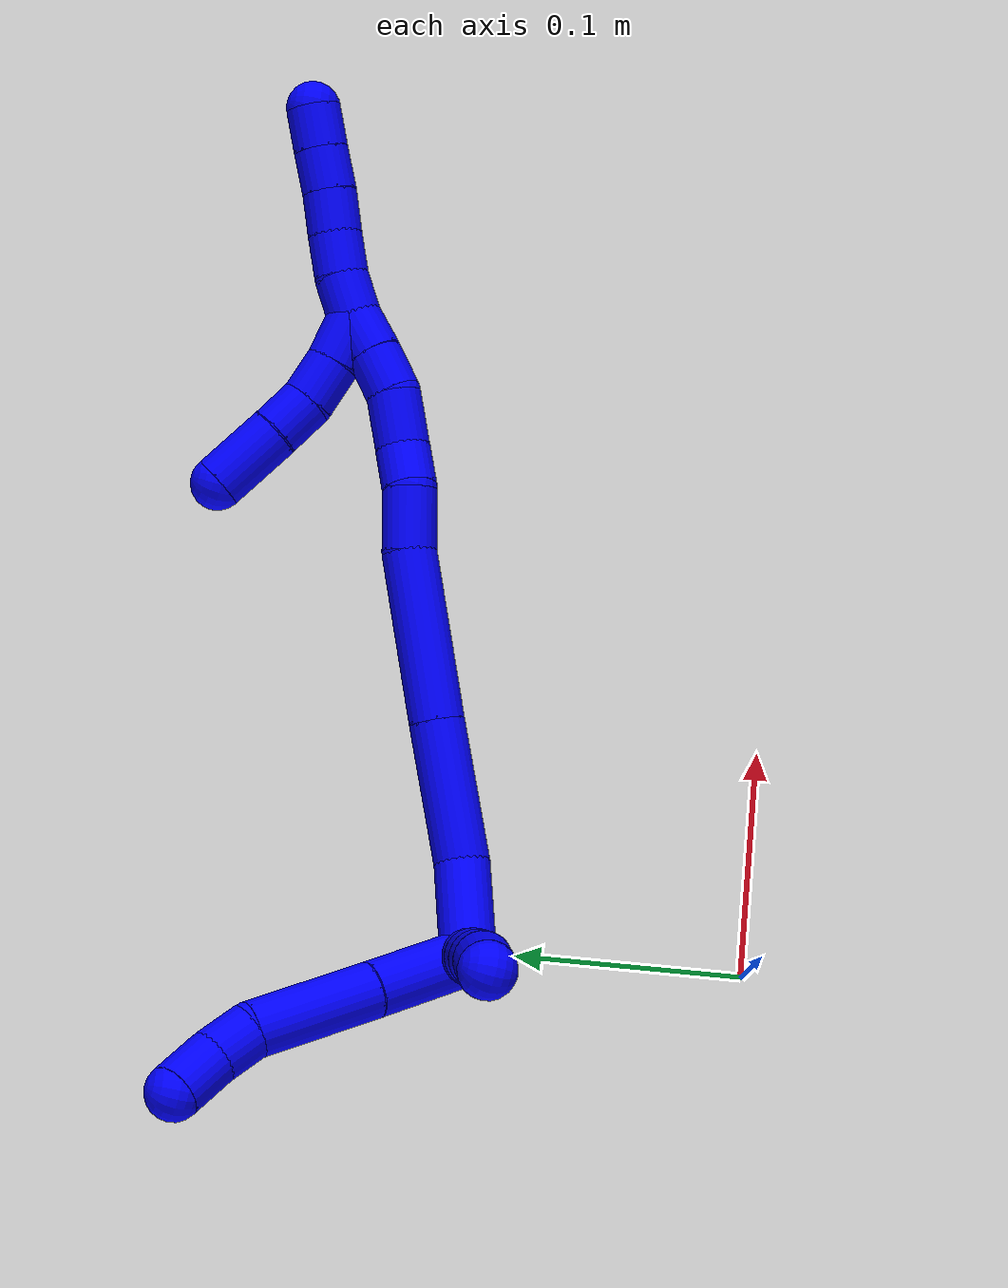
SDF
<sdf version="1.7">
 <world name="default">
  <model name="1">
   <static>0</static>
   <link name="1">
    <collision name="collision-cylinder-e_1_2_8">
     <pose>-0.012397 0.001278 0.020474 -0.062343 -0.54359 0.01738</pose>
     <geometry><cylinder><radius>0.0125</radius><length>0.047938</length></cylinder></geometry>
     <surface>
      <friction><ode><mu>1.16</mu><mu2>1.16</mu2><slip1>0</slip1><slip2>0</slip2></ode></friction>
      <contact><ode><kp>1e+06</kp><kd>1</kd><max_vel>0</max_vel><min_depth>0.001</min_depth></ode></contact>
     </surface>
    </collision>
    <visual name="visual-cylinder-e_1_2_8">
     <pose>-0.012397 0.001278 0.020474 -0.062343 -0.54359 0.01738</pose>
     <geometry><cylinder><radius>0.0125</radius><length>0.047938</length></cylinder></geometry>
     <material><ambient>0 0 1 1</ambient></material>
    </visual>
    <collision name="collision-cylinder-e_2_8_9">
     <pose>-0.038973 0.00535 0.065608 -0.112828 -0.519075 0.029988</pose>
     <geometry><cylinder><radius>0.0125</radius><length>0.057165</length></cylinder></geometry>
     <surface>
      <friction><ode><mu>1.16</mu><mu2>1.16</mu2><slip1>0</slip1><slip2>0</slip2></ode></friction>
      <contact><ode><kp>1e+06</kp><kd>1</kd><max_vel>0</max_vel><min_depth>0.001</min_depth></ode></contact>
     </surface>
    </collision>
    <visual name="visual-cylinder-e_2_8_9">
     <pose>-0.038973 0.00535 0.065608 -0.112828 -0.519075 0.029988</pose>
     <geometry><cylinder><radius>0.0125</radius><length>0.057165</length></cylinder></geometry>
     <material><ambient>0 0 1 1</ambient></material>
    </visual>
    <collision name="collision-cylinder-e_3_9_10">
     <pose>-0.0602 0.010105 0.097217 -0.274966 -0.77331 0.112544</pose>
     <geometry><cylinder><radius>0.0125</radius><length>0.020178</length></cylinder></geometry>
     <surface>
      <friction><ode><mu>1.16</mu><mu2>1.16</mu2><slip1>0</slip1><slip2>0</slip2></ode></friction>
      <contact><ode><kp>1e+06</kp><kd>1</kd><max_vel>0</max_vel><min_depth>0.001</min_depth></ode></contact>
     </surface>
    </collision>
    <visual name="visual-cylinder-e_3_9_10">
     <pose>-0.0602 0.010105 0.097217 -0.274966 -0.77331 0.112544</pose>
     <geometry><cylinder><radius>0.0125</radius><length>0.020178</length></cylinder></geometry>
     <material><ambient>0 0 1 1</ambient></material>
    </visual>
    <collision name="collision-cylinder-e_4_10_6">
     <pose>-0.077061 0.011361 0.111645 0.093862 -0.917464 -0.046381</pose>
     <geometry><cylinder><radius>0.0125</radius><length>0.024719</length></cylinder></geometry>
     <surface>
      <friction><ode><mu>1.16</mu><mu2>1.16</mu2><slip1>0</slip1><slip2>0</slip2></ode></friction>
      <contact><ode><kp>1e+06</kp><kd>1</kd><max_vel>0</max_vel><min_depth>0.001</min_depth></ode></contact>
     </surface>
    </collision>
    <visual name="visual-cylinder-e_4_10_6">
     <pose>-0.077061 0.011361 0.111645 0.093862 -0.917464 -0.046381</pose>
     <geometry><cylinder><radius>0.0125</radius><length>0.024719</length></cylinder></geometry>
     <material><ambient>0 0 1 1</ambient></material>
    </visual>
    <collision name="collision-cylinder-e_1_2_11">
     <pose>-0.007531 -0.015355 0.004047 1.3131 -0.442837 -0.343516</pose>
     <geometry><cylinder><radius>0.0125</radius><length>0.035149</length></cylinder></geometry>
     <surface>
      <friction><ode><mu>1.16</mu><mu2>1.16</mu2><slip1>0</slip1><slip2>0</slip2></ode></friction>
      <contact><ode><kp>1e+06</kp><kd>1</kd><max_vel>0</max_vel><min_depth>0.001</min_depth></ode></contact>
     </surface>
    </collision>
    <visual name="visual-cylinder-e_1_2_11">
     <pose>-0.007531 -0.015355 0.004047 1.3131 -0.442837 -0.343516</pose>
     <geometry><cylinder><radius>0.0125</radius><length>0.035149</length></cylinder></geometry>
     <material><ambient>0 0 1 1</ambient></material>
    </visual>
    <collision name="collision-cylinder-e_2_11_12">
     <pose>-0.020298 -0.040834 0.010445 1.34256 -0.46668 -0.373187</pose>
     <geometry><cylinder><radius>0.0125</radius><length>0.023276</length></cylinder></geometry>
     <surface>
      <friction><ode><mu>1.16</mu><mu2>1.16</mu2><slip1>0</slip1><slip2>0</slip2></ode></friction>
      <contact><ode><kp>1e+06</kp><kd>1</kd><max_vel>0</max_vel><min_depth>0.001</min_depth></ode></contact>
     </surface>
    </collision>
    <visual name="visual-cylinder-e_2_11_12">
     <pose>-0.020298 -0.040834 0.010445 1.34256 -0.46668 -0.373187</pose>
     <geometry><cylinder><radius>0.0125</radius><length>0.023276</length></cylinder></geometry>
     <material><ambient>0 0 1 1</ambient></material>
    </visual>
    <collision name="collision-cylinder-e_3_12_13">
     <pose>-0.030041 -0.059693 0.014689 1.3575 -0.467024 -0.379094</pose>
     <geometry><cylinder><radius>0.0125</radius><length>0.02002</length></cylinder></geometry>
     <surface>
      <friction><ode><mu>1.16</mu><mu2>1.16</mu2><slip1>0</slip1><slip2>0</slip2></ode></friction>
      <contact><ode><kp>1e+06</kp><kd>1</kd><max_vel>0</max_vel><min_depth>0.001</min_depth></ode></contact>
     </surface>
    </collision>
    <visual name="visual-cylinder-e_3_12_13">
     <pose>-0.030041 -0.059693 0.014689 1.3575 -0.467024 -0.379094</pose>
     <geometry><cylinder><radius>0.0125</radius><length>0.02002</length></cylinder></geometry>
     <material><ambient>0 0 1 1</ambient></material>
    </visual>
    <collision name="collision-cylinder-e_4_13_5">
     <pose>-0.040707 -0.077082 0.018406 1.36296 -0.608335 -0.498636</pose>
     <geometry><cylinder><radius>0.0125</radius><length>0.021555</length></cylinder></geometry>
     <surface>
      <friction><ode><mu>1.16</mu><mu2>1.16</mu2><slip1>0</slip1><slip2>0</slip2></ode></friction>
      <contact><ode><kp>1e+06</kp><kd>1</kd><max_vel>0</max_vel><min_depth>0.001</min_depth></ode></contact>
     </surface>
    </collision>
    <visual name="visual-cylinder-e_4_13_5">
     <pose>-0.040707 -0.077082 0.018406 1.36296 -0.608335 -0.498636</pose>
     <geometry><cylinder><radius>0.0125</radius><length>0.021555</length></cylinder></geometry>
     <material><ambient>0 0 1 1</ambient></material>
    </visual>
    <collision name="collision-cylinder-e_1_2_14">
     <pose>0.02105 -0.001931 0.004086 0.441452 1.3593 0.358741</pose>
     <geometry><cylinder><radius>0.0125</radius><length>0.043059</length></cylinder></geometry>
     <surface>
      <friction><ode><mu>1.16</mu><mu2>1.16</mu2><slip1>0</slip1><slip2>0</slip2></ode></friction>
      <contact><ode><kp>1e+06</kp><kd>1</kd><max_vel>0</max_vel><min_depth>0.001</min_depth></ode></contact>
     </surface>
    </collision>
    <visual name="visual-cylinder-e_1_2_14">
     <pose>0.02105 -0.001931 0.004086 0.441452 1.3593 0.358741</pose>
     <geometry><cylinder><radius>0.0125</radius><length>0.043059</length></cylinder></geometry>
     <material><ambient>0 0 1 1</ambient></material>
    </visual>
    <collision name="collision-cylinder-e_2_14_15">
     <pose>0.0704 -0.012306 0.019859 0.625667 1.09959 0.391369</pose>
     <geometry><cylinder><radius>0.0125</radius><length>0.063521</length></cylinder></geometry>
     <surface>
      <friction><ode><mu>1.16</mu><mu2>1.16</mu2><slip1>0</slip1><slip2>0</slip2></ode></friction>
      <contact><ode><kp>1e+06</kp><kd>1</kd><max_vel>0</max_vel><min_depth>0.001</min_depth></ode></contact>
     </surface>
    </collision>
    <visual name="visual-cylinder-e_2_14_15">
     <pose>0.0704 -0.012306 0.019859 0.625667 1.09959 0.391369</pose>
     <geometry><cylinder><radius>0.0125</radius><length>0.063521</length></cylinder></geometry>
     <material><ambient>0 0 1 1</ambient></material>
    </visual>
    <collision name="collision-cylinder-e_3_15_16">
     <pose>0.133543 -0.031401 0.045391 0.655762 1.1061 0.413953</pose>
     <geometry><cylinder><radius>0.0125</radius><length>0.077955</length></cylinder></geometry>
     <surface>
      <friction><ode><mu>1.16</mu><mu2>1.16</mu2><slip1>0</slip1><slip2>0</slip2></ode></friction>
      <contact><ode><kp>1e+06</kp><kd>1</kd><max_vel>0</max_vel><min_depth>0.001</min_depth></ode></contact>
     </surface>
    </collision>
    <visual name="visual-cylinder-e_3_15_16">
     <pose>0.133543 -0.031401 0.045391 0.655762 1.1061 0.413953</pose>
     <geometry><cylinder><radius>0.0125</radius><length>0.077955</length></cylinder></geometry>
     <material><ambient>0 0 1 1</ambient></material>
    </visual>
    <collision name="collision-cylinder-e_4_16_17">
     <pose>0.18134 -0.047327 0.062316 1.04222 1.13013 0.698105</pose>
     <geometry><cylinder><radius>0.0125</radius><length>0.028641</length></cylinder></geometry>
     <surface>
      <friction><ode><mu>1.16</mu><mu2>1.16</mu2><slip1>0</slip1><slip2>0</slip2></ode></friction>
      <contact><ode><kp>1e+06</kp><kd>1</kd><max_vel>0</max_vel><min_depth>0.001</min_depth></ode></contact>
     </surface>
    </collision>
    <visual name="visual-cylinder-e_4_16_17">
     <pose>0.18134 -0.047327 0.062316 1.04222 1.13013 0.698105</pose>
     <geometry><cylinder><radius>0.0125</radius><length>0.028641</length></cylinder></geometry>
     <material><ambient>0 0 1 1</ambient></material>
    </visual>
    <collision name="collision-cylinder-e_5_17_18">
     <pose>0.203972 -0.053236 0.068246 0.219221 1.27785 0.163147</pose>
     <geometry><cylinder><radius>0.0125</radius><length>0.02022</length></cylinder></geometry>
     <surface>
      <friction><ode><mu>1.16</mu><mu2>1.16</mu2><slip1>0</slip1><slip2>0</slip2></ode></friction>
      <contact><ode><kp>1e+06</kp><kd>1</kd><max_vel>0</max_vel><min_depth>0.001</min_depth></ode></contact>
     </surface>
    </collision>
    <visual name="visual-cylinder-e_5_17_18">
     <pose>0.203972 -0.053236 0.068246 0.219221 1.27785 0.163147</pose>
     <geometry><cylinder><radius>0.0125</radius><length>0.02022</length></cylinder></geometry>
     <material><ambient>0 0 1 1</ambient></material>
    </visual>
    <collision name="collision-cylinder-e_6_18_19">
     <pose>0.225082 -0.057687 0.075878 0.673459 1.07933 0.413369</pose>
     <geometry><cylinder><radius>0.0125</radius><length>0.025929</length></cylinder></geometry>
     <surface>
      <friction><ode><mu>1.16</mu><mu2>1.16</mu2><slip1>0</slip1><slip2>0</slip2></ode></friction>
      <contact><ode><kp>1e+06</kp><kd>1</kd><max_vel>0</max_vel><min_depth>0.001</min_depth></ode></contact>
     </surface>
    </collision>
    <visual name="visual-cylinder-e_6_18_19">
     <pose>0.225082 -0.057687 0.075878 0.673459 1.07933 0.413369</pose>
     <geometry><cylinder><radius>0.0125</radius><length>0.025929</length></cylinder></geometry>
     <material><ambient>0 0 1 1</ambient></material>
    </visual>
    <collision name="collision-cylinder-e_7_19_20">
     <pose>0.244984 -0.062393 0.086367 0.154704 0.972481 0.081889</pose>
     <geometry><cylinder><radius>0.0125</radius><length>0.020507</length></cylinder></geometry>
     <surface>
      <friction><ode><mu>1.16</mu><mu2>1.16</mu2><slip1>0</slip1><slip2>0</slip2></ode></friction>
      <contact><ode><kp>1e+06</kp><kd>1</kd><max_vel>0</max_vel><min_depth>0.001</min_depth></ode></contact>
     </surface>
    </collision>
    <visual name="visual-cylinder-e_7_19_20">
     <pose>0.244984 -0.062393 0.086367 0.154704 0.972481 0.081889</pose>
     <geometry><cylinder><radius>0.0125</radius><length>0.020507</length></cylinder></geometry>
     <material><ambient>0 0 1 1</ambient></material>
    </visual>
    <collision name="collision-cylinder-e_8_20_1">
     <pose>0.26159 -0.063792 0.098011 0.085568 0.938518 0.043406</pose>
     <geometry><cylinder><radius>0.0125</radius><length>0.020167</length></cylinder></geometry>
     <surface>
      <friction><ode><mu>1.16</mu><mu2>1.16</mu2><slip1>0</slip1><slip2>0</slip2></ode></friction>
      <contact><ode><kp>1e+06</kp><kd>1</kd><max_vel>0</max_vel><min_depth>0.001</min_depth></ode></contact>
     </surface>
    </collision>
    <visual name="visual-cylinder-e_8_20_1">
     <pose>0.26159 -0.063792 0.098011 0.085568 0.938518 0.043406</pose>
     <geometry><cylinder><radius>0.0125</radius><length>0.020167</length></cylinder></geometry>
     <material><ambient>0 0 1 1</ambient></material>
    </visual>
    <collision name="collision-cylinder-e_1_1_21">
     <pose>0.278194 -0.066524 0.108777 0.431457 1.01032 0.241202</pose>
     <geometry><cylinder><radius>0.0125</radius><length>0.02</length></cylinder></geometry>
     <surface>
      <friction><ode><mu>1.16</mu><mu2>1.16</mu2><slip1>0</slip1><slip2>0</slip2></ode></friction>
      <contact><ode><kp>1e+06</kp><kd>1</kd><max_vel>0</max_vel><min_depth>0.001</min_depth></ode></contact>
     </surface>
    </collision>
    <visual name="visual-cylinder-e_1_1_21">
     <pose>0.278194 -0.066524 0.108777 0.431457 1.01032 0.241202</pose>
     <geometry><cylinder><radius>0.0125</radius><length>0.02</length></cylinder></geometry>
     <material><ambient>0 0 1 1</ambient></material>
    </visual>
    <collision name="collision-cylinder-e_2_21_22">
     <pose>0.295468 -0.071794 0.11724 0.69755 1.07667 0.427671</pose>
     <geometry><cylinder><radius>0.0125</radius><length>0.02</length></cylinder></geometry>
     <surface>
      <friction><ode><mu>1.16</mu><mu2>1.16</mu2><slip1>0</slip1><slip2>0</slip2></ode></friction>
      <contact><ode><kp>1e+06</kp><kd>1</kd><max_vel>0</max_vel><min_depth>0.001</min_depth></ode></contact>
     </surface>
    </collision>
    <visual name="visual-cylinder-e_2_21_22">
     <pose>0.295468 -0.071794 0.11724 0.69755 1.07667 0.427671</pose>
     <geometry><cylinder><radius>0.0125</radius><length>0.02</length></cylinder></geometry>
     <material><ambient>0 0 1 1</ambient></material>
    </visual>
    <collision name="collision-cylinder-e_3_22_23">
     <pose>0.31287 -0.078512 0.124423 0.802631 1.03489 0.473976</pose>
     <geometry><cylinder><radius>0.0125</radius><length>0.02</length></cylinder></geometry>
     <surface>
      <friction><ode><mu>1.16</mu><mu2>1.16</mu2><slip1>0</slip1><slip2>0</slip2></ode></friction>
      <contact><ode><kp>1e+06</kp><kd>1</kd><max_vel>0</max_vel><min_depth>0.001</min_depth></ode></contact>
     </surface>
    </collision>
    <visual name="visual-cylinder-e_3_22_23">
     <pose>0.31287 -0.078512 0.124423 0.802631 1.03489 0.473976</pose>
     <geometry><cylinder><radius>0.0125</radius><length>0.02</length></cylinder></geometry>
     <material><ambient>0 0 1 1</ambient></material>
    </visual>
    <collision name="collision-cylinder-e_4_23_24">
     <pose>0.329839 -0.085693 0.132168 0.696184 0.991952 0.387755</pose>
     <geometry><cylinder><radius>0.0125</radius><length>0.02</length></cylinder></geometry>
     <surface>
      <friction><ode><mu>1.16</mu><mu2>1.16</mu2><slip1>0</slip1><slip2>0</slip2></ode></friction>
      <contact><ode><kp>1e+06</kp><kd>1</kd><max_vel>0</max_vel><min_depth>0.001</min_depth></ode></contact>
     </surface>
    </collision>
    <visual name="visual-cylinder-e_4_23_24">
     <pose>0.329839 -0.085693 0.132168 0.696184 0.991952 0.387755</pose>
     <geometry><cylinder><radius>0.0125</radius><length>0.02</length></cylinder></geometry>
     <material><ambient>0 0 1 1</ambient></material>
    </visual>
    <collision name="collision-cylinder-e_5_24_4">
     <pose>0.346596 -0.09282 0.140437 0.72665 0.994725 0.407095</pose>
     <geometry><cylinder><radius>0.0125</radius><length>0.02</length></cylinder></geometry>
     <surface>
      <friction><ode><mu>1.16</mu><mu2>1.16</mu2><slip1>0</slip1><slip2>0</slip2></ode></friction>
      <contact><ode><kp>1e+06</kp><kd>1</kd><max_vel>0</max_vel><min_depth>0.001</min_depth></ode></contact>
     </surface>
    </collision>
    <visual name="visual-cylinder-e_5_24_4">
     <pose>0.346596 -0.09282 0.140437 0.72665 0.994725 0.407095</pose>
     <geometry><cylinder><radius>0.0125</radius><length>0.02</length></cylinder></geometry>
     <material><ambient>0 0 1 1</ambient></material>
    </visual>
    <collision name="collision-cylinder-e_1_1_25">
     <pose>0.259776 -0.058543 0.106233 -1.193 -1.01385 0.721169</pose>
     <geometry><cylinder><radius>0.0125</radius><length>0.023438</length></cylinder></geometry>
     <surface>
      <friction><ode><mu>1.16</mu><mu2>1.16</mu2><slip1>0</slip1><slip2>0</slip2></ode></friction>
      <contact><ode><kp>1e+06</kp><kd>1</kd><max_vel>0</max_vel><min_depth>0.001</min_depth></ode></contact>
     </surface>
    </collision>
    <visual name="visual-cylinder-e_1_1_25">
     <pose>0.259776 -0.058543 0.106233 -1.193 -1.01385 0.721169</pose>
     <geometry><cylinder><radius>0.0125</radius><length>0.023438</length></cylinder></geometry>
     <material><ambient>0 0 1 1</ambient></material>
    </visual>
    <collision name="collision-cylinder-e_2_25_26">
     <pose>0.241256 -0.047584 0.111959 -0.986428 -0.941799 0.534225</pose>
     <geometry><cylinder><radius>0.0125</radius><length>0.021202</length></cylinder></geometry>
     <surface>
      <friction><ode><mu>1.16</mu><mu2>1.16</mu2><slip1>0</slip1><slip2>0</slip2></ode></friction>
      <contact><ode><kp>1e+06</kp><kd>1</kd><max_vel>0</max_vel><min_depth>0.001</min_depth></ode></contact>
     </surface>
    </collision>
    <visual name="visual-cylinder-e_2_25_26">
     <pose>0.241256 -0.047584 0.111959 -0.986428 -0.941799 0.534225</pose>
     <geometry><cylinder><radius>0.0125</radius><length>0.021202</length></cylinder></geometry>
     <material><ambient>0 0 1 1</ambient></material>
    </visual>
    <collision name="collision-cylinder-e_3_26_27">
     <pose>0.225071 -0.037917 0.120949 -0.677436 -0.818677 0.303335</pose>
     <geometry><cylinder><radius>0.0125</radius><length>0.020852</length></cylinder></geometry>
     <surface>
      <friction><ode><mu>1.16</mu><mu2>1.16</mu2><slip1>0</slip1><slip2>0</slip2></ode></friction>
      <contact><ode><kp>1e+06</kp><kd>1</kd><max_vel>0</max_vel><min_depth>0.001</min_depth></ode></contact>
     </surface>
    </collision>
    <visual name="visual-cylinder-e_3_26_27">
     <pose>0.225071 -0.037917 0.120949 -0.677436 -0.818677 0.303335</pose>
     <geometry><cylinder><radius>0.0125</radius><length>0.020852</length></cylinder></geometry>
     <material><ambient>0 0 1 1</ambient></material>
    </visual>
    <collision name="collision-cylinder-e_4_27_3">
     <pose>0.205614 -0.025149 0.135907 -0.723149 -0.756549 0.298371</pose>
     <geometry><cylinder><radius>0.0125</radius><length>0.034508</length></cylinder></geometry>
     <surface>
      <friction><ode><mu>1.16</mu><mu2>1.16</mu2><slip1>0</slip1><slip2>0</slip2></ode></friction>
      <contact><ode><kp>1e+06</kp><kd>1</kd><max_vel>0</max_vel><min_depth>0.001</min_depth></ode></contact>
     </surface>
    </collision>
    <visual name="visual-cylinder-e_4_27_3">
     <pose>0.205614 -0.025149 0.135907 -0.723149 -0.756549 0.298371</pose>
     <geometry><cylinder><radius>0.0125</radius><length>0.034508</length></cylinder></geometry>
     <material><ambient>0 0 1 1</ambient></material>
    </visual>
    <collision name="collision-sphere-3">
     <pose>0.19377 -0.016846 0.145314 0 -0 0</pose>
     <geometry><sphere><radius>0.0125</radius></sphere></geometry>
     <surface>
      <friction><ode><mu>1.16</mu><mu2>1.16</mu2><slip1>0</slip1><slip2>0</slip2></ode></friction>
      <contact><ode><kp>1e+06</kp><kd>1</kd><max_vel>0</max_vel><min_depth>0.001</min_depth></ode></contact>
     </surface>
    </collision>
    <visual name="visual-sphere-3">
     <pose>0.19377 -0.016846 0.145314 0 -0 0</pose>
     <geometry><sphere><radius>0.0125</radius></sphere></geometry>
     <material><ambient>0 0 1 1</ambient></material>
    </visual>
    <collision name="collision-sphere-27">
     <pose>0.217457 -0.033453 0.126499 0 -0 0</pose>
     <geometry><sphere><radius>0.0125</radius></sphere></geometry>
     <surface>
      <friction><ode><mu>1.16</mu><mu2>1.16</mu2><slip1>0</slip1><slip2>0</slip2></ode></friction>
      <contact><ode><kp>1e+06</kp><kd>1</kd><max_vel>0</max_vel><min_depth>0.001</min_depth></ode></contact>
     </surface>
    </collision>
    <visual name="visual-sphere-27">
     <pose>0.217457 -0.033453 0.126499 0 -0 0</pose>
     <geometry><sphere><radius>0.0125</radius></sphere></geometry>
     <material><ambient>0 0 1 1</ambient></material>
    </visual>
    <collision name="collision-sphere-26">
     <pose>0.232684 -0.042382 0.115399 0 -0 0</pose>
     <geometry><sphere><radius>0.0125</radius></sphere></geometry>
     <surface>
      <friction><ode><mu>1.16</mu><mu2>1.16</mu2><slip1>0</slip1><slip2>0</slip2></ode></friction>
      <contact><ode><kp>1e+06</kp><kd>1</kd><max_vel>0</max_vel><min_depth>0.001</min_depth></ode></contact>
     </surface>
    </collision>
    <visual name="visual-sphere-26">
     <pose>0.232684 -0.042382 0.115399 0 -0 0</pose>
     <geometry><sphere><radius>0.0125</radius></sphere></geometry>
     <material><ambient>0 0 1 1</ambient></material>
    </visual>
    <collision name="collision-sphere-25">
     <pose>0.249828 -0.052785 0.108518 0 -0 0</pose>
     <geometry><sphere><radius>0.0125</radius></sphere></geometry>
     <surface>
      <friction><ode><mu>1.16</mu><mu2>1.16</mu2><slip1>0</slip1><slip2>0</slip2></ode></friction>
      <contact><ode><kp>1e+06</kp><kd>1</kd><max_vel>0</max_vel><min_depth>0.001</min_depth></ode></contact>
     </surface>
    </collision>
    <visual name="visual-sphere-25">
     <pose>0.249828 -0.052785 0.108518 0 -0 0</pose>
     <geometry><sphere><radius>0.0125</radius></sphere></geometry>
     <material><ambient>0 0 1 1</ambient></material>
    </visual>
    <collision name="collision-sphere-4">
     <pose>0.354982 -0.096439 0.144508 0 -0 0</pose>
     <geometry><sphere><radius>0.0125</radius></sphere></geometry>
     <surface>
      <friction><ode><mu>1.16</mu><mu2>1.16</mu2><slip1>0</slip1><slip2>0</slip2></ode></friction>
      <contact><ode><kp>1e+06</kp><kd>1</kd><max_vel>0</max_vel><min_depth>0.001</min_depth></ode></contact>
     </surface>
    </collision>
    <visual name="visual-sphere-4">
     <pose>0.354982 -0.096439 0.144508 0 -0 0</pose>
     <geometry><sphere><radius>0.0125</radius></sphere></geometry>
     <material><ambient>0 0 1 1</ambient></material>
    </visual>
    <collision name="collision-sphere-24">
     <pose>0.33821 -0.089201 0.136366 0 -0 0</pose>
     <geometry><sphere><radius>0.0125</radius></sphere></geometry>
     <surface>
      <friction><ode><mu>1.16</mu><mu2>1.16</mu2><slip1>0</slip1><slip2>0</slip2></ode></friction>
      <contact><ode><kp>1e+06</kp><kd>1</kd><max_vel>0</max_vel><min_depth>0.001</min_depth></ode></contact>
     </surface>
    </collision>
    <visual name="visual-sphere-24">
     <pose>0.33821 -0.089201 0.136366 0 -0 0</pose>
     <geometry><sphere><radius>0.0125</radius></sphere></geometry>
     <material><ambient>0 0 1 1</ambient></material>
    </visual>
    <collision name="collision-sphere-23">
     <pose>0.321468 -0.082185 0.127971 0 -0 0</pose>
     <geometry><sphere><radius>0.0125</radius></sphere></geometry>
     <surface>
      <friction><ode><mu>1.16</mu><mu2>1.16</mu2><slip1>0</slip1><slip2>0</slip2></ode></friction>
      <contact><ode><kp>1e+06</kp><kd>1</kd><max_vel>0</max_vel><min_depth>0.001</min_depth></ode></contact>
     </surface>
    </collision>
    <visual name="visual-sphere-23">
     <pose>0.321468 -0.082185 0.127971 0 -0 0</pose>
     <geometry><sphere><radius>0.0125</radius></sphere></geometry>
     <material><ambient>0 0 1 1</ambient></material>
    </visual>
    <collision name="collision-sphere-22">
     <pose>0.304272 -0.07484 0.120875 0 -0 0</pose>
     <geometry><sphere><radius>0.0125</radius></sphere></geometry>
     <surface>
      <friction><ode><mu>1.16</mu><mu2>1.16</mu2><slip1>0</slip1><slip2>0</slip2></ode></friction>
      <contact><ode><kp>1e+06</kp><kd>1</kd><max_vel>0</max_vel><min_depth>0.001</min_depth></ode></contact>
     </surface>
    </collision>
    <visual name="visual-sphere-22">
     <pose>0.304272 -0.07484 0.120875 0 -0 0</pose>
     <geometry><sphere><radius>0.0125</radius></sphere></geometry>
     <material><ambient>0 0 1 1</ambient></material>
    </visual>
    <collision name="collision-sphere-21">
     <pose>0.286664 -0.068747 0.113605 0 -0 0</pose>
     <geometry><sphere><radius>0.0125</radius></sphere></geometry>
     <surface>
      <friction><ode><mu>1.16</mu><mu2>1.16</mu2><slip1>0</slip1><slip2>0</slip2></ode></friction>
      <contact><ode><kp>1e+06</kp><kd>1</kd><max_vel>0</max_vel><min_depth>0.001</min_depth></ode></contact>
     </surface>
    </collision>
    <visual name="visual-sphere-21">
     <pose>0.286664 -0.068747 0.113605 0 -0 0</pose>
     <geometry><sphere><radius>0.0125</radius></sphere></geometry>
     <material><ambient>0 0 1 1</ambient></material>
    </visual>
    <collision name="collision-sphere-1">
     <pose>0.269724 -0.064301 0.103948 0 -0 0</pose>
     <geometry><sphere><radius>0.0125</radius></sphere></geometry>
     <surface>
      <friction><ode><mu>1.16</mu><mu2>1.16</mu2><slip1>0</slip1><slip2>0</slip2></ode></friction>
      <contact><ode><kp>1e+06</kp><kd>1</kd><max_vel>0</max_vel><min_depth>0.001</min_depth></ode></contact>
     </surface>
    </collision>
    <visual name="visual-sphere-1">
     <pose>0.269724 -0.064301 0.103948 0 -0 0</pose>
     <geometry><sphere><radius>0.0125</radius></sphere></geometry>
     <material><ambient>0 0 1 1</ambient></material>
    </visual>
    <collision name="collision-sphere-11">
     <pose>-0.015061 -0.03071 0.008094 0 -0 0</pose>
     <geometry><sphere><radius>0.0125</radius></sphere></geometry>
     <surface>
      <friction><ode><mu>1.16</mu><mu2>1.16</mu2><slip1>0</slip1><slip2>0</slip2></ode></friction>
      <contact><ode><kp>1e+06</kp><kd>1</kd><max_vel>0</max_vel><min_depth>0.001</min_depth></ode></contact>
     </surface>
    </collision>
    <visual name="visual-sphere-11">
     <pose>-0.015061 -0.03071 0.008094 0 -0 0</pose>
     <geometry><sphere><radius>0.0125</radius></sphere></geometry>
     <material><ambient>0 0 1 1</ambient></material>
    </visual>
    <collision name="collision-sphere-6">
     <pose>-0.086875 0.010657 0.119124 0 -0 0</pose>
     <geometry><sphere><radius>0.0125</radius></sphere></geometry>
     <surface>
      <friction><ode><mu>1.16</mu><mu2>1.16</mu2><slip1>0</slip1><slip2>0</slip2></ode></friction>
      <contact><ode><kp>1e+06</kp><kd>1</kd><max_vel>0</max_vel><min_depth>0.001</min_depth></ode></contact>
     </surface>
    </collision>
    <visual name="visual-sphere-6">
     <pose>-0.086875 0.010657 0.119124 0 -0 0</pose>
     <geometry><sphere><radius>0.0125</radius></sphere></geometry>
     <material><ambient>0 0 1 1</ambient></material>
    </visual>
    <collision name="collision-sphere-10">
     <pose>-0.067247 0.012065 0.104165 0 -0 0</pose>
     <geometry><sphere><radius>0.0125</radius></sphere></geometry>
     <surface>
      <friction><ode><mu>1.16</mu><mu2>1.16</mu2><slip1>0</slip1><slip2>0</slip2></ode></friction>
      <contact><ode><kp>1e+06</kp><kd>1</kd><max_vel>0</max_vel><min_depth>0.001</min_depth></ode></contact>
     </surface>
    </collision>
    <visual name="visual-sphere-10">
     <pose>-0.067247 0.012065 0.104165 0 -0 0</pose>
     <geometry><sphere><radius>0.0125</radius></sphere></geometry>
     <material><ambient>0 0 1 1</ambient></material>
    </visual>
    <collision name="collision-sphere-9">
     <pose>-0.053152 0.008145 0.090268 0 -0 0</pose>
     <geometry><sphere><radius>0.0125</radius></sphere></geometry>
     <surface>
      <friction><ode><mu>1.16</mu><mu2>1.16</mu2><slip1>0</slip1><slip2>0</slip2></ode></friction>
      <contact><ode><kp>1e+06</kp><kd>1</kd><max_vel>0</max_vel><min_depth>0.001</min_depth></ode></contact>
     </surface>
    </collision>
    <visual name="visual-sphere-9">
     <pose>-0.053152 0.008145 0.090268 0 -0 0</pose>
     <geometry><sphere><radius>0.0125</radius></sphere></geometry>
     <material><ambient>0 0 1 1</ambient></material>
    </visual>
    <collision name="collision-sphere-2">
     <geometry><sphere><radius>0.0125</radius></sphere></geometry>
     <surface>
      <friction><ode><mu>1.16</mu><mu2>1.16</mu2><slip1>0</slip1><slip2>0</slip2></ode></friction>
      <contact><ode><kp>1e+06</kp><kd>1</kd><max_vel>0</max_vel><min_depth>0.001</min_depth></ode></contact>
     </surface>
    </collision>
    <visual name="visual-sphere-2">
     <geometry><sphere><radius>0.0125</radius></sphere></geometry>
     <material><ambient>0 0 1 1</ambient></material>
    </visual>
    <collision name="collision-sphere-19">
     <pose>0.236511 -0.061503 0.080661 0 -0 0</pose>
     <geometry><sphere><radius>0.0125</radius></sphere></geometry>
     <surface>
      <friction><ode><mu>1.16</mu><mu2>1.16</mu2><slip1>0</slip1><slip2>0</slip2></ode></friction>
      <contact><ode><kp>1e+06</kp><kd>1</kd><max_vel>0</max_vel><min_depth>0.001</min_depth></ode></contact>
     </surface>
    </collision>
    <visual name="visual-sphere-19">
     <pose>0.236511 -0.061503 0.080661 0 -0 0</pose>
     <geometry><sphere><radius>0.0125</radius></sphere></geometry>
     <material><ambient>0 0 1 1</ambient></material>
    </visual>
    <collision name="collision-sphere-8">
     <pose>-0.024794 0.002556 0.040948 0 -0 0</pose>
     <geometry><sphere><radius>0.0125</radius></sphere></geometry>
     <surface>
      <friction><ode><mu>1.16</mu><mu2>1.16</mu2><slip1>0</slip1><slip2>0</slip2></ode></friction>
      <contact><ode><kp>1e+06</kp><kd>1</kd><max_vel>0</max_vel><min_depth>0.001</min_depth></ode></contact>
     </surface>
    </collision>
    <visual name="visual-sphere-8">
     <pose>-0.024794 0.002556 0.040948 0 -0 0</pose>
     <geometry><sphere><radius>0.0125</radius></sphere></geometry>
     <material><ambient>0 0 1 1</ambient></material>
    </visual>
    <collision name="collision-sphere-12">
     <pose>-0.025534 -0.050958 0.012797 0 -0 0</pose>
     <geometry><sphere><radius>0.0125</radius></sphere></geometry>
     <surface>
      <friction><ode><mu>1.16</mu><mu2>1.16</mu2><slip1>0</slip1><slip2>0</slip2></ode></friction>
      <contact><ode><kp>1e+06</kp><kd>1</kd><max_vel>0</max_vel><min_depth>0.001</min_depth></ode></contact>
     </surface>
    </collision>
    <visual name="visual-sphere-12">
     <pose>-0.025534 -0.050958 0.012797 0 -0 0</pose>
     <geometry><sphere><radius>0.0125</radius></sphere></geometry>
     <material><ambient>0 0 1 1</ambient></material>
    </visual>
    <collision name="collision-sphere-13">
     <pose>-0.034547 -0.068429 0.016581 0 -0 0</pose>
     <geometry><sphere><radius>0.0125</radius></sphere></geometry>
     <surface>
      <friction><ode><mu>1.16</mu><mu2>1.16</mu2><slip1>0</slip1><slip2>0</slip2></ode></friction>
      <contact><ode><kp>1e+06</kp><kd>1</kd><max_vel>0</max_vel><min_depth>0.001</min_depth></ode></contact>
     </surface>
    </collision>
    <visual name="visual-sphere-13">
     <pose>-0.034547 -0.068429 0.016581 0 -0 0</pose>
     <geometry><sphere><radius>0.0125</radius></sphere></geometry>
     <material><ambient>0 0 1 1</ambient></material>
    </visual>
    <collision name="collision-sphere-5">
     <pose>-0.046866 -0.085736 0.020231 0 -0 0</pose>
     <geometry><sphere><radius>0.0125</radius></sphere></geometry>
     <surface>
      <friction><ode><mu>1.16</mu><mu2>1.16</mu2><slip1>0</slip1><slip2>0</slip2></ode></friction>
      <contact><ode><kp>1e+06</kp><kd>1</kd><max_vel>0</max_vel><min_depth>0.001</min_depth></ode></contact>
     </surface>
    </collision>
    <visual name="visual-sphere-5">
     <pose>-0.046866 -0.085736 0.020231 0 -0 0</pose>
     <geometry><sphere><radius>0.0125</radius></sphere></geometry>
     <material><ambient>0 0 1 1</ambient></material>
    </visual>
    <collision name="collision-sphere-14">
     <pose>0.0421 -0.003862 0.008173 0 -0 0</pose>
     <geometry><sphere><radius>0.0125</radius></sphere></geometry>
     <surface>
      <friction><ode><mu>1.16</mu><mu2>1.16</mu2><slip1>0</slip1><slip2>0</slip2></ode></friction>
      <contact><ode><kp>1e+06</kp><kd>1</kd><max_vel>0</max_vel><min_depth>0.001</min_depth></ode></contact>
     </surface>
    </collision>
    <visual name="visual-sphere-14">
     <pose>0.0421 -0.003862 0.008173 0 -0 0</pose>
     <geometry><sphere><radius>0.0125</radius></sphere></geometry>
     <material><ambient>0 0 1 1</ambient></material>
    </visual>
    <collision name="collision-sphere-15">
     <pose>0.098699 -0.02075 0.031546 0 -0 0</pose>
     <geometry><sphere><radius>0.0125</radius></sphere></geometry>
     <surface>
      <friction><ode><mu>1.16</mu><mu2>1.16</mu2><slip1>0</slip1><slip2>0</slip2></ode></friction>
      <contact><ode><kp>1e+06</kp><kd>1</kd><max_vel>0</max_vel><min_depth>0.001</min_depth></ode></contact>
     </surface>
    </collision>
    <visual name="visual-sphere-15">
     <pose>0.098699 -0.02075 0.031546 0 -0 0</pose>
     <geometry><sphere><radius>0.0125</radius></sphere></geometry>
     <material><ambient>0 0 1 1</ambient></material>
    </visual>
    <collision name="collision-sphere-16">
     <pose>0.168388 -0.042052 0.059236 0 -0 0</pose>
     <geometry><sphere><radius>0.0125</radius></sphere></geometry>
     <surface>
      <friction><ode><mu>1.16</mu><mu2>1.16</mu2><slip1>0</slip1><slip2>0</slip2></ode></friction>
      <contact><ode><kp>1e+06</kp><kd>1</kd><max_vel>0</max_vel><min_depth>0.001</min_depth></ode></contact>
     </surface>
    </collision>
    <visual name="visual-sphere-16">
     <pose>0.168388 -0.042052 0.059236 0 -0 0</pose>
     <geometry><sphere><radius>0.0125</radius></sphere></geometry>
     <material><ambient>0 0 1 1</ambient></material>
    </visual>
    <collision name="collision-sphere-17">
     <pose>0.194293 -0.052601 0.065397 0 -0 0</pose>
     <geometry><sphere><radius>0.0125</radius></sphere></geometry>
     <surface>
      <friction><ode><mu>1.16</mu><mu2>1.16</mu2><slip1>0</slip1><slip2>0</slip2></ode></friction>
      <contact><ode><kp>1e+06</kp><kd>1</kd><max_vel>0</max_vel><min_depth>0.001</min_depth></ode></contact>
     </surface>
    </collision>
    <visual name="visual-sphere-17">
     <pose>0.194293 -0.052601 0.065397 0 -0 0</pose>
     <geometry><sphere><radius>0.0125</radius></sphere></geometry>
     <material><ambient>0 0 1 1</ambient></material>
    </visual>
    <collision name="collision-sphere-18">
     <pose>0.213652 -0.053871 0.071096 0 -0 0</pose>
     <geometry><sphere><radius>0.0125</radius></sphere></geometry>
     <surface>
      <friction><ode><mu>1.16</mu><mu2>1.16</mu2><slip1>0</slip1><slip2>0</slip2></ode></friction>
      <contact><ode><kp>1e+06</kp><kd>1</kd><max_vel>0</max_vel><min_depth>0.001</min_depth></ode></contact>
     </surface>
    </collision>
    <visual name="visual-sphere-18">
     <pose>0.213652 -0.053871 0.071096 0 -0 0</pose>
     <geometry><sphere><radius>0.0125</radius></sphere></geometry>
     <material><ambient>0 0 1 1</ambient></material>
    </visual>
    <collision name="collision-sphere-20">
     <pose>0.253456 -0.063283 0.092073 0 -0 0</pose>
     <geometry><sphere><radius>0.0125</radius></sphere></geometry>
     <surface>
      <friction><ode><mu>1.16</mu><mu2>1.16</mu2><slip1>0</slip1><slip2>0</slip2></ode></friction>
      <contact><ode><kp>1e+06</kp><kd>1</kd><max_vel>0</max_vel><min_depth>0.001</min_depth></ode></contact>
     </surface>
    </collision>
    <visual name="visual-sphere-20">
     <pose>0.253456 -0.063283 0.092073 0 -0 0</pose>
     <geometry><sphere><radius>0.0125</radius></sphere></geometry>
     <material><ambient>0 0 1 1</ambient></material>
    </visual>
    <inertial>
     <pose>0.116448 -0.033663 0.065229 0 -0 0</pose>
     <mass>0.75</mass>
     <inertia><ixx>0.000105</ixx><ixy>0</ixy><ixz>0</ixz><iyy>0.000137</iyy><iyz>0</iyz><izz>-3e-06</izz></inertia>
    </inertial>
   </link>
   <pose>-0.003878 0.120474 0.020782 -1.23854 0.355494 0.005405</pose>
  </model>
 </world>
</sdf>
